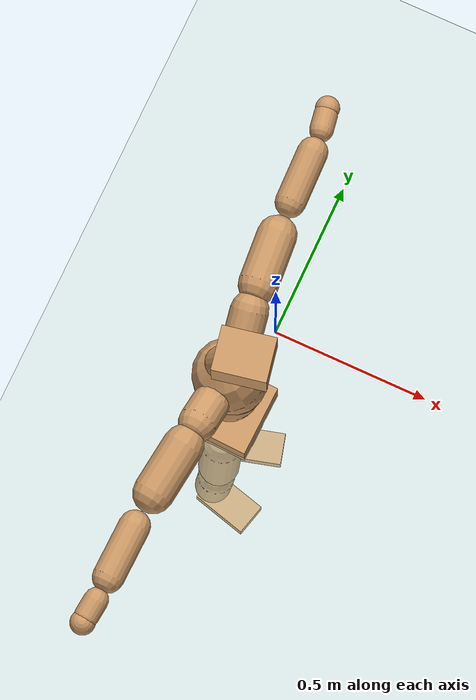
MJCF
<mujoco model="humanoid">
  <compiler coordinate="local" angle="radian"/>
  <default>
    <joint damping="0.0" armature="0.01" stiffness="0.0" limited="true"/>
    <geom conaffinity="1" condim="3" contype="7" margin="0.001" rgba="0.8 0.6 .4 1"/>
  </default>
  <asset>
    <texture type="skybox" builtin="gradient" rgb1=".4 .5 .6" rgb2="0 0 0" width="100" height="100"/>
    <texture builtin="flat" height="1278" mark="cross" markrgb="1 1 1" name="texgeom" random="0.01" rgb1="0.8 0.6 0.4" rgb2="0.8 0.6 0.4" type="cube" width="127"/>
    <texture builtin="checker" height="100" name="texplane" rgb1="0 0 0" rgb2="0.8 0.8 0.8" type="2d" width="100"/>
    <material name="MatPlane" reflectance="0.5" shininess="1" specular="1" texrepeat="60 60" texture="texplane"/>
    <material name="geom" texture="texgeom" texuniform="true"/>
  </asset>
  <worldbody>
    <light cutoff="100" diffuse="1 1 1" dir="-0 0 -1.3" directional="true" exponent="1" pos="0 0 1.3" specular=".1 .1 .1"/>
    <geom conaffinity="1" condim="3" name="floor" pos="0 0 0" rgba="0.8 0.9 0.8 1" size="100 100 .2" type="plane" material="MatPlane"/>
    <body name="Pelvis" pos="-0.0016 -0.2806 0.0282">
      <freejoint name="Pelvis"/>
      <geom type="box" contype="1" conaffinity="1" density="500" pos="-0.0118 0.0004 -0.0085" size="0.0958 0.1123 0.051" quat="0.9999 0.0000 0.0000 -0.0168" name="Pelvis"/>
      <body name="L_Hip" pos="-0.0184 0.0626 -0.0911">
        <joint name="L_Hip_x" type="hinge" pos="0 0 0" axis="1 0 0" stiffness="800" damping="80" armature="0.02" range="-180.0000 180.0000"/>
        <joint name="L_Hip_y" type="hinge" pos="0 0 0" axis="0 1 0" stiffness="800" damping="80" armature="0.02" range="-180.0000 180.0000"/>
        <joint name="L_Hip_z" type="hinge" pos="0 0 0" axis="0 0 1" stiffness="800" damping="80" armature="0.02" range="-180.0000 180.0000"/>
        <geom type="capsule" contype="1" conaffinity="1" density="500" fromto="0.0012 0.0083 -0.0795 0.0049 0.0332 -0.3178" size="0.0652" name="L_Hip"/>
        <body name="L_Knee" pos="0.0061 0.0415 -0.3973">
          <joint name="L_Knee_x" type="hinge" pos="0 0 0" axis="1 0 0" stiffness="800" damping="80" armature="0.02" range="-180.0000 180.0000"/>
          <joint name="L_Knee_y" type="hinge" pos="0 0 0" axis="0 1 0" stiffness="800" damping="80" armature="0.02" range="-180.0000 180.0000"/>
          <joint name="L_Knee_z" type="hinge" pos="0 0 0" axis="0 0 1" stiffness="800" damping="80" armature="0.02" range="-180.0000 180.0000"/>
          <geom type="capsule" contype="1" conaffinity="1" density="500" fromto="-0.0085 -0.0034 -0.0887 -0.0340 -0.0135 -0.3548" size="0.0594" name="L_Knee"/>
          <body name="L_Ankle" pos="-0.0425 -0.0169 -0.4436">
            <joint name="L_Ankle_x" type="hinge" pos="0 0 0" axis="1 0 0" stiffness="800" damping="80" armature="0.02" range="-180.0000 180.0000"/>
            <joint name="L_Ankle_y" type="hinge" pos="0 0 0" axis="0 1 0" stiffness="800" damping="80" armature="0.02" range="-180.0000 180.0000"/>
            <joint name="L_Ankle_z" type="hinge" pos="0 0 0" axis="0 0 1" stiffness="800" damping="80" armature="0.02" range="-180.0000 180.0000"/>
            <geom type="box" contype="1" conaffinity="1" density="500" pos="0.0653 0.0182 -0.0314" size="0.0932 0.0528 0.0245" quat="0.9908 0.0000 0.0000 0.1353" name="L_Ankle"/>
            <body name="L_Toe" pos="0.1306 0.0363 -0.0628">
              <joint name="L_Toe_x" type="hinge" pos="0 0 0" axis="1 0 0" stiffness="500" damping="50" armature="0.02" range="-180.0000 180.0000"/>
              <joint name="L_Toe_y" type="hinge" pos="0 0 0" axis="0 1 0" stiffness="500" damping="50" armature="0.02" range="-180.0000 180.0000"/>
              <joint name="L_Toe_z" type="hinge" pos="0 0 0" axis="0 0 1" stiffness="500" damping="50" armature="0.02" range="-180.0000 180.0000"/>
              <geom type="box" contype="1" conaffinity="1" density="500" pos="0.0000 0.0000 0.0314" size="0.0011 0.0026 0.0012" quat="0.9901 0.0000 0.0000 0.1403" name="L_Toe"/>
            </body>
          </body>
        </body>
      </body>
      <body name="R_Hip" pos="-0.0143 -0.0646 -0.0999">
        <joint name="R_Hip_x" type="hinge" pos="0 0 0" axis="1 0 0" stiffness="800" damping="80" armature="0.02" range="-180.0000 180.0000"/>
        <joint name="R_Hip_y" type="hinge" pos="0 0 0" axis="0 1 0" stiffness="800" damping="80" armature="0.02" range="-180.0000 180.0000"/>
        <joint name="R_Hip_z" type="hinge" pos="0 0 0" axis="0 0 1" stiffness="800" damping="80" armature="0.02" range="-180.0000 180.0000"/>
        <geom type="capsule" contype="1" conaffinity="1" density="500" fromto="-0.0011 -0.0087 -0.0797 -0.0045 -0.0348 -0.3186" size="0.0649" name="R_Hip"/>
        <body name="R_Knee" pos="-0.0056 -0.0435 -0.3983">
          <joint name="R_Knee_x" type="hinge" pos="0 0 0" axis="1 0 0" stiffness="800" damping="80" armature="0.02" range="-180.0000 180.0000"/>
          <joint name="R_Knee_y" type="hinge" pos="0 0 0" axis="0 1 0" stiffness="800" damping="80" armature="0.02" range="-180.0000 180.0000"/>
          <joint name="R_Knee_z" type="hinge" pos="0 0 0" axis="0 0 1" stiffness="800" damping="80" armature="0.02" range="-180.0000 180.0000"/>
          <geom type="capsule" contype="1" conaffinity="1" density="500" fromto="-0.0077 0.0044 -0.0878 -0.0308 0.0176 -0.3513" size="0.0591" name="R_Knee"/>
          <body name="R_Ankle" pos="-0.0384 0.022 -0.4392">
            <joint name="R_Ankle_x" type="hinge" pos="0 0 0" axis="1 0 0" stiffness="800" damping="80" armature="0.02" range="-180.0000 180.0000"/>
            <joint name="R_Ankle_y" type="hinge" pos="0 0 0" axis="0 1 0" stiffness="800" damping="80" armature="0.02" range="-180.0000 180.0000"/>
            <joint name="R_Ankle_z" type="hinge" pos="0 0 0" axis="0 0 1" stiffness="800" damping="80" armature="0.02" range="-180.0000 180.0000"/>
            <geom type="box" contype="1" conaffinity="1" density="500" pos="0.0695 -0.0179 -0.0327" size="0.0948 0.0536 0.024" quat="0.9920 0.0000 0.0000 -0.1260" name="R_Ankle"/>
            <body name="R_Toe" pos="0.139 -0.0359 -0.0653">
              <joint name="R_Toe_x" type="hinge" pos="0 0 0" axis="1 0 0" stiffness="500" damping="50" armature="0.02" range="-180.0000 180.0000"/>
              <joint name="R_Toe_y" type="hinge" pos="0 0 0" axis="0 1 0" stiffness="500" damping="50" armature="0.02" range="-180.0000 180.0000"/>
              <joint name="R_Toe_z" type="hinge" pos="0 0 0" axis="0 0 1" stiffness="500" damping="50" armature="0.02" range="-180.0000 180.0000"/>
              <geom type="box" contype="1" conaffinity="1" density="500" pos="0.0000 0.0000 0.0338" size="0.0011 0.0026 0.0013" quat="0.9931 0.0000 0.0000 -0.1177" name="R_Toe"/>
            </body>
          </body>
        </body>
      </body>
      <body name="Torso" pos="-0.0383 0.0044 0.1403">
        <joint name="Torso_x" type="hinge" pos="0 0 0" axis="1 0 0" stiffness="1000" damping="100" armature="0.02" range="-180.0000 180.0000"/>
        <joint name="Torso_y" type="hinge" pos="0 0 0" axis="0 1 0" stiffness="1000" damping="100" armature="0.02" range="-180.0000 180.0000"/>
        <joint name="Torso_z" type="hinge" pos="0 0 0" axis="0 0 1" stiffness="1000" damping="100" armature="0.02" range="-180.0000 180.0000"/>
        <geom type="capsule" contype="1" conaffinity="1" density="500" fromto="0.0201 0.0035 0.0950 0.0134 0.0024 0.0634" size="0.0897" name="Torso"/>
        <body name="Spine" pos="0.0335 0.0059 0.1584">
          <joint name="Spine_x" type="hinge" pos="0 0 0" axis="1 0 0" stiffness="1000" damping="100" armature="0.02" range="-180.0000 180.0000"/>
          <joint name="Spine_y" type="hinge" pos="0 0 0" axis="0 1 0" stiffness="1000" damping="100" armature="0.02" range="-180.0000 180.0000"/>
          <joint name="Spine_z" type="hinge" pos="0 0 0" axis="0 0 1" stiffness="1000" damping="100" armature="0.02" range="-180.0000 180.0000"/>
          <geom type="capsule" contype="1" conaffinity="1" density="500" fromto="0.0031 -0.0019 0.0391 0.0021 -0.0013 0.0261" size="0.0875" name="Spine"/>
          <body name="Chest" pos="0.0052 -0.0031 0.0652">
            <joint name="Chest_x" type="hinge" pos="0 0 0" axis="1 0 0" stiffness="1000" damping="100" armature="0.02" range="-180.0000 180.0000"/>
            <joint name="Chest_y" type="hinge" pos="0 0 0" axis="0 1 0" stiffness="1000" damping="100" armature="0.02" range="-180.0000 180.0000"/>
            <joint name="Chest_z" type="hinge" pos="0 0 0" axis="0 0 1" stiffness="1000" damping="100" armature="0.02" range="-180.0000 180.0000"/>
            <geom type="capsule" contype="1" conaffinity="1" density="500" fromto="-0.0197 -0.0054 0.0981 -0.0131 -0.0036 0.0654" size="0.1102" name="Chest"/>
            <body name="Neck" pos="-0.0479 -0.0151 0.2388">
              <joint name="Neck_x" type="hinge" pos="0 0 0" axis="1 0 0" stiffness="500" damping="50" armature="0.02" range="-180.0000 180.0000"/>
              <joint name="Neck_y" type="hinge" pos="0 0 0" axis="0 1 0" stiffness="500" damping="50" armature="0.02" range="-180.0000 180.0000"/>
              <joint name="Neck_z" type="hinge" pos="0 0 0" axis="0 0 1" stiffness="500" damping="50" armature="0.02" range="-180.0000 180.0000"/>
              <geom type="capsule" contype="1" conaffinity="1" density="500" fromto="0.0101 0.0017 0.0187 0.0404 0.0067 0.0747" size="0.0486" name="Neck"/>
              <body name="Head" pos="0.0506 0.0084 0.0934">
                <joint name="Head_x" type="hinge" pos="0 0 0" axis="1 0 0" stiffness="500" damping="50" armature="0.02" range="-180.0000 180.0000"/>
                <joint name="Head_y" type="hinge" pos="0 0 0" axis="0 1 0" stiffness="500" damping="50" armature="0.02" range="-180.0000 180.0000"/>
                <joint name="Head_z" type="hinge" pos="0 0 0" axis="0 0 1" stiffness="500" damping="50" armature="0.02" range="-180.0000 180.0000"/>
                <geom type="box" contype="1" conaffinity="1" density="500" pos="0.0263 0.0052 0.0477" size="0.0801 0.0666 0.0573" quat="0.9953 0.0000 0.0000 0.0973" name="Head"/>
              </body>
            </body>
            <body name="L_Thorax" pos="-0.0229 0.0763 0.1266">
              <joint name="L_Thorax_x" type="hinge" pos="0 0 0" axis="1 0 0" stiffness="500" damping="50" armature="0.02" range="-180.0000 180.0000"/>
              <joint name="L_Thorax_y" type="hinge" pos="0 0 0" axis="0 1 0" stiffness="500" damping="50" armature="0.02" range="-180.0000 180.0000"/>
              <joint name="L_Thorax_z" type="hinge" pos="0 0 0" axis="0 0 1" stiffness="500" damping="50" armature="0.02" range="-180.0000 180.0000"/>
              <geom type="capsule" contype="1" conaffinity="1" density="500" fromto="-0.0042 0.0259 0.0090 -0.0167 0.1035 0.0362" size="0.0571" name="L_Thorax"/>
              <body name="L_Shoulder" pos="-0.0208 0.1293 0.0452">
                <joint name="L_Shoulder_x" type="hinge" pos="0 0 0" axis="1 0 0" stiffness="500" damping="50" armature="0.02" range="-720.0000 720.0000"/>
                <joint name="L_Shoulder_y" type="hinge" pos="0 0 0" axis="0 1 0" stiffness="500" damping="50" armature="0.02" range="-720.0000 720.0000"/>
                <joint name="L_Shoulder_z" type="hinge" pos="0 0 0" axis="0 0 1" stiffness="500" damping="50" armature="0.02" range="-720.0000 720.0000"/>
                <geom type="capsule" contype="1" conaffinity="1" density="500" fromto="-0.0046 0.0528 -0.0031 -0.0183 0.2111 -0.0122" size="0.0595" name="L_Shoulder"/>
                <body name="L_Elbow" pos="-0.0229 0.2639 -0.0153">
                  <joint name="L_Elbow_x" type="hinge" pos="0 0 0" axis="1 0 0" stiffness="500" damping="50" armature="0.02" range="-720.0000 720.0000"/>
                  <joint name="L_Elbow_y" type="hinge" pos="0 0 0" axis="0 1 0" stiffness="500" damping="50" armature="0.02" range="-720.0000 720.0000"/>
                  <joint name="L_Elbow_z" type="hinge" pos="0 0 0" axis="0 0 1" stiffness="500" damping="50" armature="0.02" range="-720.0000 720.0000"/>
                  <geom type="capsule" contype="1" conaffinity="1" density="500" fromto="-0.0014 0.0541 0.0024 -0.0055 0.2164 0.0095" size="0.046" name="L_Elbow"/>
                  <body name="L_Wrist" pos="-0.0068 0.2705 0.0119">
                    <joint name="L_Wrist_x" type="hinge" pos="0 0 0" axis="1 0 0" stiffness="300" damping="30" armature="0.02" range="-180.0000 180.0000"/>
                    <joint name="L_Wrist_y" type="hinge" pos="0 0 0" axis="0 1 0" stiffness="300" damping="30" armature="0.02" range="-180.0000 180.0000"/>
                    <joint name="L_Wrist_z" type="hinge" pos="0 0 0" axis="0 0 1" stiffness="300" damping="30" armature="0.02" range="-180.0000 180.0000"/>
                    <geom type="capsule" contype="1" conaffinity="1" density="500" fromto="-0.0031 0.0178 -0.0021 -0.0126 0.0711 -0.0086" size="0.0356" name="L_Wrist"/>
                    <body name="L_Hand" pos="-0.0157 0.0888 -0.0107">
                      <joint name="L_Hand_x" type="hinge" pos="0 0 0" axis="1 0 0" stiffness="300" damping="30" armature="0.02" range="-180.0000 180.0000"/>
                      <joint name="L_Hand_y" type="hinge" pos="0 0 0" axis="0 1 0" stiffness="300" damping="30" armature="0.02" range="-180.0000 180.0000"/>
                      <joint name="L_Hand_z" type="hinge" pos="0 0 0" axis="0 0 1" stiffness="300" damping="30" armature="0.02" range="-180.0000 180.0000"/>
                      <geom type="sphere" contype="1" conaffinity="1" density="500" size="0.0367" pos="0.0000 0.0000 0.0000" name="L_Hand"/>
                    </body>
                  </body>
                </body>
              </body>
            </body>
            <body name="R_Thorax" pos="-0.0277 -0.0881 0.1251">
              <joint name="R_Thorax_x" type="hinge" pos="0 0 0" axis="1 0 0" stiffness="500" damping="50" armature="0.02" range="-180.0000 180.0000"/>
              <joint name="R_Thorax_y" type="hinge" pos="0 0 0" axis="0 1 0" stiffness="500" damping="50" armature="0.02" range="-180.0000 180.0000"/>
              <joint name="R_Thorax_z" type="hinge" pos="0 0 0" axis="0 0 1" stiffness="500" damping="50" armature="0.02" range="-180.0000 180.0000"/>
              <geom type="capsule" contype="1" conaffinity="1" density="500" fromto="-0.0018 -0.0239 0.0095 -0.0073 -0.0955 0.0378" size="0.0569" name="R_Thorax"/>
              <body name="R_Shoulder" pos="-0.0091 -0.1194 0.0473">
                <joint name="R_Shoulder_x" type="hinge" pos="0 0 0" axis="1 0 0" stiffness="500" damping="50" armature="0.02" range="-720.0000 720.0000"/>
                <joint name="R_Shoulder_y" type="hinge" pos="0 0 0" axis="0 1 0" stiffness="500" damping="50" armature="0.02" range="-720.0000 720.0000"/>
                <joint name="R_Shoulder_z" type="hinge" pos="0 0 0" axis="0 0 1" stiffness="500" damping="50" armature="0.02" range="-720.0000 720.0000"/>
                <geom type="capsule" contype="1" conaffinity="1" density="500" fromto="-0.0066 -0.0534 -0.0025 -0.0263 -0.2136 -0.0102" size="0.0603" name="R_Shoulder"/>
                <body name="R_Elbow" pos="-0.0329 -0.267 -0.0127">
                  <joint name="R_Elbow_x" type="hinge" pos="0 0 0" axis="1 0 0" stiffness="500" damping="50" armature="0.02" range="-720.0000 720.0000"/>
                  <joint name="R_Elbow_y" type="hinge" pos="0 0 0" axis="0 1 0" stiffness="500" damping="50" armature="0.02" range="-720.0000 720.0000"/>
                  <joint name="R_Elbow_z" type="hinge" pos="0 0 0" axis="0 0 1" stiffness="500" damping="50" armature="0.02" range="-720.0000 720.0000"/>
                  <geom type="capsule" contype="1" conaffinity="1" density="500" fromto="-0.0014 -0.0547 0.0009 -0.0056 -0.2186 0.0037" size="0.0467" name="R_Elbow"/>
                  <body name="R_Wrist" pos="-0.007 -0.2733 0.0046">
                    <joint name="R_Wrist_x" type="hinge" pos="0 0 0" axis="1 0 0" stiffness="300" damping="30" armature="0.02" range="-180.0000 180.0000"/>
                    <joint name="R_Wrist_y" type="hinge" pos="0 0 0" axis="0 1 0" stiffness="300" damping="30" armature="0.02" range="-180.0000 180.0000"/>
                    <joint name="R_Wrist_z" type="hinge" pos="0 0 0" axis="0 0 1" stiffness="300" damping="30" armature="0.02" range="-180.0000 180.0000"/>
                    <geom type="capsule" contype="1" conaffinity="1" density="500" fromto="-0.0020 -0.0183 -0.0017 -0.0078 -0.0731 -0.0069" size="0.0363" name="R_Wrist"/>
                    <body name="R_Hand" pos="-0.0098 -0.0914 -0.0087">
                      <joint name="R_Hand_x" type="hinge" pos="0 0 0" axis="1 0 0" stiffness="300" damping="30" armature="0.02" range="-180.0000 180.0000"/>
                      <joint name="R_Hand_y" type="hinge" pos="0 0 0" axis="0 1 0" stiffness="300" damping="30" armature="0.02" range="-180.0000 180.0000"/>
                      <joint name="R_Hand_z" type="hinge" pos="0 0 0" axis="0 0 1" stiffness="300" damping="30" armature="0.02" range="-180.0000 180.0000"/>
                      <geom type="sphere" contype="1" conaffinity="1" density="500" size="0.0373" pos="0.0000 0.0000 0.0000" name="R_Hand"/>
                    </body>
                  </body>
                </body>
              </body>
            </body>
          </body>
        </body>
      </body>
    </body>
  </worldbody>
  <actuator>
    <motor name="L_Hip_x" joint="L_Hip_x" gear="500"/>
    <motor name="L_Hip_y" joint="L_Hip_y" gear="500"/>
    <motor name="L_Hip_z" joint="L_Hip_z" gear="500"/>
    <motor name="L_Knee_x" joint="L_Knee_x" gear="500"/>
    <motor name="L_Knee_y" joint="L_Knee_y" gear="500"/>
    <motor name="L_Knee_z" joint="L_Knee_z" gear="500"/>
    <motor name="L_Ankle_x" joint="L_Ankle_x" gear="500"/>
    <motor name="L_Ankle_y" joint="L_Ankle_y" gear="500"/>
    <motor name="L_Ankle_z" joint="L_Ankle_z" gear="500"/>
    <motor name="L_Toe_x" joint="L_Toe_x" gear="500"/>
    <motor name="L_Toe_y" joint="L_Toe_y" gear="500"/>
    <motor name="L_Toe_z" joint="L_Toe_z" gear="500"/>
    <motor name="R_Hip_x" joint="R_Hip_x" gear="500"/>
    <motor name="R_Hip_y" joint="R_Hip_y" gear="500"/>
    <motor name="R_Hip_z" joint="R_Hip_z" gear="500"/>
    <motor name="R_Knee_x" joint="R_Knee_x" gear="500"/>
    <motor name="R_Knee_y" joint="R_Knee_y" gear="500"/>
    <motor name="R_Knee_z" joint="R_Knee_z" gear="500"/>
    <motor name="R_Ankle_x" joint="R_Ankle_x" gear="500"/>
    <motor name="R_Ankle_y" joint="R_Ankle_y" gear="500"/>
    <motor name="R_Ankle_z" joint="R_Ankle_z" gear="500"/>
    <motor name="R_Toe_x" joint="R_Toe_x" gear="500"/>
    <motor name="R_Toe_y" joint="R_Toe_y" gear="500"/>
    <motor name="R_Toe_z" joint="R_Toe_z" gear="500"/>
    <motor name="Torso_x" joint="Torso_x" gear="500"/>
    <motor name="Torso_y" joint="Torso_y" gear="500"/>
    <motor name="Torso_z" joint="Torso_z" gear="500"/>
    <motor name="Spine_x" joint="Spine_x" gear="500"/>
    <motor name="Spine_y" joint="Spine_y" gear="500"/>
    <motor name="Spine_z" joint="Spine_z" gear="500"/>
    <motor name="Chest_x" joint="Chest_x" gear="500"/>
    <motor name="Chest_y" joint="Chest_y" gear="500"/>
    <motor name="Chest_z" joint="Chest_z" gear="500"/>
    <motor name="Neck_x" joint="Neck_x" gear="500"/>
    <motor name="Neck_y" joint="Neck_y" gear="500"/>
    <motor name="Neck_z" joint="Neck_z" gear="500"/>
    <motor name="Head_x" joint="Head_x" gear="500"/>
    <motor name="Head_y" joint="Head_y" gear="500"/>
    <motor name="Head_z" joint="Head_z" gear="500"/>
    <motor name="L_Thorax_x" joint="L_Thorax_x" gear="500"/>
    <motor name="L_Thorax_y" joint="L_Thorax_y" gear="500"/>
    <motor name="L_Thorax_z" joint="L_Thorax_z" gear="500"/>
    <motor name="L_Shoulder_x" joint="L_Shoulder_x" gear="500"/>
    <motor name="L_Shoulder_y" joint="L_Shoulder_y" gear="500"/>
    <motor name="L_Shoulder_z" joint="L_Shoulder_z" gear="500"/>
    <motor name="L_Elbow_x" joint="L_Elbow_x" gear="500"/>
    <motor name="L_Elbow_y" joint="L_Elbow_y" gear="500"/>
    <motor name="L_Elbow_z" joint="L_Elbow_z" gear="500"/>
    <motor name="L_Wrist_x" joint="L_Wrist_x" gear="500"/>
    <motor name="L_Wrist_y" joint="L_Wrist_y" gear="500"/>
    <motor name="L_Wrist_z" joint="L_Wrist_z" gear="500"/>
    <motor name="L_Hand_x" joint="L_Hand_x" gear="500"/>
    <motor name="L_Hand_y" joint="L_Hand_y" gear="500"/>
    <motor name="L_Hand_z" joint="L_Hand_z" gear="500"/>
    <motor name="R_Thorax_x" joint="R_Thorax_x" gear="500"/>
    <motor name="R_Thorax_y" joint="R_Thorax_y" gear="500"/>
    <motor name="R_Thorax_z" joint="R_Thorax_z" gear="500"/>
    <motor name="R_Shoulder_x" joint="R_Shoulder_x" gear="500"/>
    <motor name="R_Shoulder_y" joint="R_Shoulder_y" gear="500"/>
    <motor name="R_Shoulder_z" joint="R_Shoulder_z" gear="500"/>
    <motor name="R_Elbow_x" joint="R_Elbow_x" gear="500"/>
    <motor name="R_Elbow_y" joint="R_Elbow_y" gear="500"/>
    <motor name="R_Elbow_z" joint="R_Elbow_z" gear="500"/>
    <motor name="R_Wrist_x" joint="R_Wrist_x" gear="500"/>
    <motor name="R_Wrist_y" joint="R_Wrist_y" gear="500"/>
    <motor name="R_Wrist_z" joint="R_Wrist_z" gear="500"/>
    <motor name="R_Hand_x" joint="R_Hand_x" gear="500"/>
    <motor name="R_Hand_y" joint="R_Hand_y" gear="500"/>
    <motor name="R_Hand_z" joint="R_Hand_z" gear="500"/>
  </actuator>
  <contact>
    <exclude body1="Torso" body2="Chest"/>
    <exclude body1="Head" body2="Chest"/>
    <exclude body1="R_Knee" body2="R_Toe"/>
    <exclude body1="R_Knee" body2="L_Ankle"/>
    <exclude body1="R_Knee" body2="L_Toe"/>
    <exclude body1="L_Knee" body2="L_Toe"/>
    <exclude body1="L_Knee" body2="R_Ankle"/>
    <exclude body1="L_Knee" body2="R_Toe"/>
    <exclude body1="L_Shoulder" body2="Chest"/>
    <exclude body1="R_Shoulder" body2="Chest"/>
  </contact>
  <sensor/>
  <size njmax="700" nconmax="700"/>
</mujoco>
